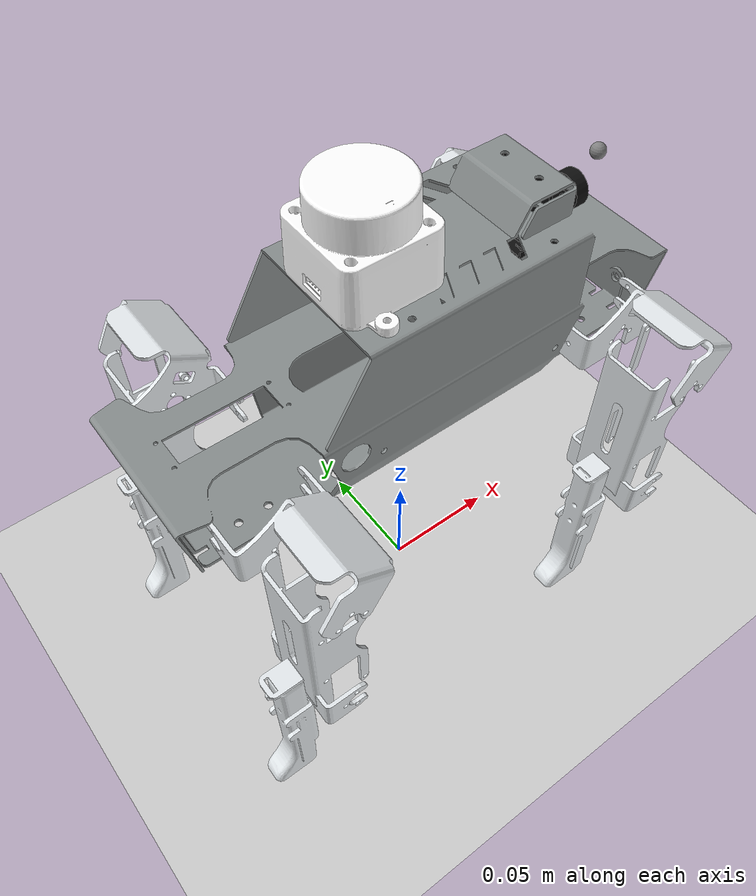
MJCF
<mujoco model="xgo">
  <compiler angle="radian" autolimits="true" inertiafromgeom="false" meshdir="assets/xgo" />
  <option timestep="0.001" gravity="0 0 -9.81" integrator="implicitfast" />
  <default>
    <!-- These passive joint values are simulation tuning; they are not present in the URDF. -->
    <joint damping="0.03" armature="0.0005" frictionloss="0.01" />
    <geom friction="0.9 0.02 0.001" condim="3" />
    <!-- URDF limits: effort=25 Nm, position=[-pi,+pi].
         URDF velocity=1.5 rad/s is enforced by mujoco_sim.py as a command slew-rate limit. -->
    <position kp="6.0" kv="0.12" ctrllimited="true" ctrlrange="-3.141592653589793 3.141592653589793" forcelimited="true" forcerange="-25 25" />
    <default class="collision">
      <geom group="3" />
    </default>
    <default class="visual">
      <geom type="mesh" group="1" contype="0" conaffinity="0" mass="0" />
    </default>
  </default>
  <asset>
    <mesh name="XGO_base_link_0" file="XGO_base_link_0.obj" />
    <mesh name="XGO_lf_hip_link_0" file="XGO_lf_hip_link_0.obj" />
    <mesh name="XGO_lf_upper_leg_link_0" file="XGO_lf_upper_leg_link_0.obj" />
    <mesh name="XGO_lf_lower_leg_link_0" file="XGO_lf_lower_leg_link_0.obj" />
    <mesh name="XGO_rf_hip_link_0" file="XGO_rf_hip_link_0.obj" />
    <mesh name="XGO_rf_upper_leg_link_0" file="XGO_rf_upper_leg_link_0.obj" />
    <mesh name="XGO_rf_lower_leg_link_0" file="XGO_rf_lower_leg_link_0.obj" />
    <mesh name="XGO_lh_hip_link_0" file="XGO_lh_hip_link_0.obj" />
    <mesh name="XGO_lh_upper_leg_link_0" file="XGO_lh_upper_leg_link_0.obj" />
    <mesh name="XGO_lh_lower_leg_link_0" file="XGO_lh_lower_leg_link_0.obj" />
    <mesh name="XGO_rh_hip_link_0" file="XGO_rh_hip_link_0.obj" />
    <mesh name="XGO_rh_upper_leg_link_0" file="XGO_rh_upper_leg_link_0.obj" />
    <mesh name="XGO_rh_lower_leg_link_0" file="XGO_rh_lower_leg_link_0.obj" />
    <mesh name="XGO_camera_link_0" file="XGO_camera_link_0.obj" />
    <mesh name="XGO_laser_link_0" file="XGO_laser_link_0.obj" />
  </asset>
  <worldbody>
    <geom name="floor" type="plane" size="10 10 0.1" rgba="0.8 0.8 0.8 1" />
    <light pos="0 0 2" dir="0 0 -1" />
    <!-- Spawn height is a simulator initial condition, not a URDF property. -->
    <body name="base_link" pos="0 0 0.115">
      <freejoint name="root" />
      <inertial pos="0.00520835146477011 -0.000260539720599709 0.0280591836024867" mass="0.387351847505872" fullinertia="0.000190614924105559 0.0010563840813291 0.00118548753067654 1.611909782579E-06 -3.19577698047172E-06 -1.54888786284979E-06" />
      <!-- Simplified collision box fitted to the STL axis-aligned bounds. -->
      <geom name="base_collision" type="box" size="0.10447969287633896 0.030220000073313713 0.040951005241367966" pos="-0.0016277730464935303 0 0.03910232422640547" rgba="0.2 0.3 0.6 1" class="collision" />
      <geom name="base_link_visual" class="visual" mesh="XGO_base_link_0" rgba="0.529411764705882 0.549019607843137 0.549019607843137 1" />
      <body name="lf_hip_link" pos="0.09332 0.022407 0.01454">
        <joint name="lf_hip_joint" type="hinge" axis="1 0 0" limited="true" range="-3.141592653589793 3.141592653589793" />
        <inertial pos="-0.0139720018610026 0.0250894092965121 0.00927328896542384" mass="0.019600254805245" fullinertia="5.89203493378017E-06 3.7904205321723E-06 6.88837034802653E-06 -5.67038080686865E-07 -2.62883769311083E-07 -1.16491568847576E-06" />
        <geom name="lf_hip_collision" type="capsule" fromto="0 0 0 -0.018325 0.049313 0" size="0.009" rgba="0.5 0.5 0.5 1" class="collision" />
        <geom name="lf_hip_link_visual" class="visual" mesh="XGO_lf_hip_link_0" rgba="0.898039215686275 0.917647058823529 0.929411764705882 1" />
        <body name="lf_upper_leg_link" pos="-0.018325 0.049313 0">
          <joint name="lf_upper_leg_joint" type="hinge" axis="0 1 0" limited="true" range="-3.141592653589793 3.141592653589793" />
          <inertial pos="-0.00689428079248722 -0.0186700000000002 -0.0299480398915498" mass="0.012342949675616" fullinertia="5.47497407669945E-06 4.86023562858699E-06 1.83454593627849E-06 -3.81090641763637E-22 5.64425515319236E-21 1.43987804089399E-12" />
          <geom name="lf_upper_collision" type="capsule" fromto="0 0 0 0 -0.00072 -0.059896" size="0.008" rgba="0.3 0.3 0.3 1" class="collision" />
          <geom name="lf_upper_leg_link_visual" class="visual" mesh="XGO_lf_upper_leg_link_0" rgba="0.898039215686275 0.917647058823529 0.929411764705882 1" />
          <body name="lf_lower_leg_link" pos="0 -0.00072 -0.059896">
            <joint name="lf_lower_leg_joint" type="hinge" axis="0 1 0" limited="true" range="-3.141592653589793 3.141592653589793" />
            <inertial pos="-0.0167811557825132 -0.0183250059303989 -0.03162385840477" mass="0.022687879462132" fullinertia="1.41147289858082E-05 1.36483004430885E-05 1.39274465973039E-06 -5.34206016944144E-13 -9.81905906721924E-07 -2.32220795182774E-12" />
            <geom name="lf_lower_collision" type="capsule" fromto="0 0 0 -0.028 0 -0.0815" size="0.006" rgba="0.3 0.3 0.3 1" class="collision" />
            <geom name="lf_foot" type="sphere" pos="-0.028 0 -0.0815" size="0.008" rgba="0.9 0.4 0.2 1" class="collision" />
            <geom name="lf_lower_leg_link_visual" class="visual" mesh="XGO_lf_lower_leg_link_0" rgba="0.898039215686275 0.917647058823529 0.929411764705882 1" />
            <site name="lf_foot_site" pos="-0.028 0 -0.0815" size="0.004" />
          </body>
        </body>
      </body>
      <body name="rf_hip_link" pos="0.09332 -0.022517 0.01454">
        <joint name="rf_hip_joint" type="hinge" axis="1 0 0" limited="true" range="-3.141592653589793 3.141592653589793" />
        <inertial pos="-0.0139720087743548 -0.0250894047059051 0.00927327973937202" mass="0.00980012555956536" fullinertia="2.94601764038129E-06 1.89520891096478E-06 3.44418624242758E-06 2.83519397568544E-07 -1.31441224533273E-07 5.82458368574124E-07" />
        <geom name="rf_hip_collision" type="capsule" fromto="0 0 0 -0.018325 -0.049313 0" size="0.009" rgba="0.5 0.5 0.5 1" class="collision" />
        <geom name="rf_hip_link_visual" class="visual" mesh="XGO_rf_hip_link_0" rgba="0.898039215686275 0.917647058823529 0.929411764705882 1" />
        <body name="rf_upper_leg_link" pos="-0.018325 -0.049313 0">
          <joint name="rf_upper_leg_joint" type="hinge" axis="0 1 0" limited="true" range="-3.141592653589793 3.141592653589793" />
          <inertial pos="-0.00689428079248688 0.018700000000002 -0.0299480398915499" mass="0.0123429496756159" fullinertia="5.47497407669944E-06 4.86023562858698E-06 1.83454593627847E-06 -2.0611276716309E-20 1.96257242900458E-21 1.43987803985982E-12" />
          <geom name="rf_upper_collision" type="capsule" fromto="0 0 0 0 0 -0.059896" size="0.008" rgba="0.3 0.3 0.3 1" class="collision" />
          <geom name="rf_upper_leg_link_visual" class="visual" mesh="XGO_rf_upper_leg_link_0" rgba="0.898039215686275 0.917647058823529 0.929411764705882 1" />
          <body name="rf_lower_leg_link" pos="0 0 -0.059896">
            <joint name="rf_lower_leg_joint" type="hinge" axis="0 1 0" limited="true" range="-3.141592653589793 3.141592653589793" />
            <inertial pos="-0.016781155771109 0.0183249940632203 -0.0316238583795284" mass="0.0226878794123114" fullinertia="1.41147289746255E-05 1.3648300431669E-05 1.39274465829374E-06 -5.3440270556883E-13 -9.81905905136456E-07 -2.32170698199082E-12" />
            <geom name="rf_lower_collision" type="capsule" fromto="0 0 0 -0.028 0 -0.0815" size="0.006" rgba="0.3 0.3 0.3 1" class="collision" />
            <geom name="rf_foot" type="sphere" pos="-0.028 0 -0.0815" size="0.008" rgba="0.9 0.4 0.2 1" class="collision" />
            <geom name="rf_lower_leg_link_visual" class="visual" mesh="XGO_rf_lower_leg_link_0" rgba="0.898039215686275 0.917647058823529 0.929411764705882 1" />
            <site name="rf_foot_site" pos="-0.028 0 -0.0815" size="0.004" />
          </body>
        </body>
      </body>
      <body name="lh_hip_link" pos="-0.05668 0.022407 0.01454">
        <joint name="lh_hip_joint" type="hinge" axis="1 0 0" limited="true" range="-3.141592653589793 3.141592653589793" />
        <inertial pos="-0.0139720018610022 0.0250894092965121 0.00927328896542402" mass="0.019600254805245" fullinertia="5.89203493378016E-06 3.79042053217232E-06 6.8883703480265E-06 -5.67038080686868E-07 -2.62883769311102E-07 -1.16491568847579E-06" />
        <geom name="lh_hip_collision" type="capsule" fromto="0 0 0 -0.0183249999999999 0.0493130541805868 0" size="0.009" rgba="0.5 0.5 0.5 1" class="collision" />
        <geom name="lh_hip_link_visual" class="visual" mesh="XGO_lh_hip_link_0" rgba="0.898039215686275 0.917647058823529 0.929411764705882 1" />
        <body name="lh_upper_leg_link" pos="-0.0183249999999999 0.0493130541805868 0">
          <joint name="lh_upper_leg_joint" type="hinge" axis="0 1 0" limited="true" range="-3.141592653589793 3.141592653589793" />
          <inertial pos="-0.00689428079248695 -0.0186700000000005 -0.0299480398915495" mass="0.0123429496756159" fullinertia="5.47497407669944E-06 4.86023562858698E-06 1.83454593627848E-06 -2.75633243799764E-21 9.32745289581667E-21 1.4398780610445E-12" />
          <geom name="lh_upper_collision" type="capsule" fromto="0 0 0 0 -0.00072 -0.059896" size="0.008" rgba="0.3 0.3 0.3 1" class="collision" />
          <geom name="lh_upper_leg_link_visual" class="visual" mesh="XGO_lh_upper_leg_link_0" rgba="0.898039215686275 0.917647058823529 0.929411764705882 1" />
          <body name="lh_lower_leg_link" pos="0 -0.00072 -0.059896">
            <joint name="lh_lower_leg_joint" type="hinge" axis="0 1 0" limited="true" range="-3.141592653589793 3.141592653589793" />
            <inertial pos="-0.0167811557787652 -0.0183250059325003 -0.0316238584061345" mass="0.0226878794439316" fullinertia="1.41147289784473E-05 1.36483004357316E-05 1.39274465908676E-06 -5.34101678210922E-13 -9.81905906147013E-07 -2.32069575705543E-12" />
            <geom name="lh_lower_collision" type="capsule" fromto="0 0 0 -0.028 0 -0.0815" size="0.006" rgba="0.3 0.3 0.3 1" class="collision" />
            <geom name="lh_foot" type="sphere" pos="-0.028 0 -0.0815" size="0.008" rgba="0.9 0.4 0.2 1" class="collision" />
            <geom name="lh_lower_leg_link_visual" class="visual" mesh="XGO_lh_lower_leg_link_0" rgba="0.898039215686275 0.917647058823529 0.929411764705882 1" />
            <site name="lh_foot_site" pos="-0.028 0 -0.0815" size="0.004" />
          </body>
        </body>
      </body>
      <body name="rh_hip_link" pos="-0.05668 -0.022517 0.01454">
        <joint name="rh_hip_joint" type="hinge" axis="1 0 0" limited="true" range="-3.141592653589793 3.141592653589793" />
        <inertial pos="-0.0139720087743545 -0.0250894047059051 0.00927327973937168" mass="0.00980012555956509" fullinertia="2.94601764038125E-06 1.89520891096475E-06 3.44418624242756E-06 2.83519397568547E-07 -1.31441224533272E-07 5.8245836857411E-07" />
        <geom name="rh_hip_collision" type="capsule" fromto="0 0 0 -0.018325 -0.049313 0" size="0.009" rgba="0.5 0.5 0.5 1" class="collision" />
        <geom name="rh_hip_link_visual" class="visual" mesh="XGO_rh_hip_link_0" rgba="0.898039215686275 0.917647058823529 0.929411764705882 1" />
        <body name="rh_upper_leg_link" pos="-0.018325 -0.049313 0">
          <joint name="rh_upper_leg_joint" type="hinge" axis="0 1 0" limited="true" range="-3.141592653589793 3.141592653589793" />
          <inertial pos="-0.00689428079248684 0.0187000000000015 -0.0299480398915497" mass="0.0123429496756159" fullinertia="5.47497407669943E-06 4.86023562858697E-06 1.83454593627849E-06 -1.59437966027726E-21 2.38691803281188E-22 1.43987807159176E-12" />
          <geom name="rh_upper_collision" type="capsule" fromto="0 0 0 0 0 -0.059896" size="0.008" rgba="0.3 0.3 0.3 1" class="collision" />
          <geom name="rh_upper_leg_link_visual" class="visual" mesh="XGO_rh_upper_leg_link_0" rgba="0.898039215686275 0.917647058823529 0.929411764705882 1" />
          <body name="rh_lower_leg_link" pos="0 0 -0.059896">
            <joint name="rh_lower_leg_joint" type="hinge" axis="0 1 0" limited="true" range="-3.141592653589793 3.141592653589793" />
            <inertial pos="-0.0167811557016845 0.0183249940379433 -0.0316238581313005" mass="0.0226878792028959" fullinertia="1.41147288978932E-05 1.36483003526844E-05 1.39274464946125E-06 -5.37750477164225E-13 -9.81905884621754E-07 -2.33519052107278E-12" />
            <geom name="rh_lower_collision" type="capsule" fromto="0 0 0 -0.028 0 -0.0815" size="0.006" rgba="0.3 0.3 0.3 1" class="collision" />
            <geom name="rh_foot" type="sphere" pos="-0.028 0 -0.0815" size="0.008" rgba="0.9 0.4 0.2 1" class="collision" />
            <geom name="rh_lower_leg_link_visual" class="visual" mesh="XGO_rh_lower_leg_link_0" rgba="0.898039215686275 0.917647058823529 0.929411764705882 1" />
            <site name="rh_foot_site" pos="-0.028 0 -0.0815" size="0.004" />
          </body>
        </body>
      </body>
      <!-- Fixed payload links copied from the URDF so their mass contributes to base dynamics. -->
      <body name="camera_link" pos="0.075751 0 0.059653">
        <inertial pos="-0.0141667877097374 -4.70243546289578E-05 -0.000117154201057887" mass="0.00465716120355248" fullinertia="3.06225211138596E-07 3.69724180703298E-07 3.81829903495435E-07 -1.92519366340594E-09 5.22083640009109E-09 2.22463439295763E-09" />
        <geom name="camera_link_visual" class="visual" mesh="XGO_camera_link_0" rgba="0.0549019607843137 0.0549019607843137 0.0549019607843137 1" />
      </body>
      <body name="laser_link" pos="-0.016732 4.4164E-05 0.10335">
        <inertial pos="3.78566923279477E-05 -0.000119937093508327 -0.022798439512917" mass="0.0141156733693049" fullinertia="2.42577727195545E-06 2.37021015047955E-06 4.25931212063486E-06 -7.70141087552742E-09 6.54011918414534E-09 6.61859556534528E-09" />
        <geom name="laser_link_visual" class="visual" mesh="XGO_laser_link_0" rgba="1 1 1 1" />
      </body>
      <body name="imu_link" pos="0.085 4.4164E-05 0.070">
        <inertial pos="0 0 0" mass="0.0141156733693049" fullinertia="2.42577727195545E-06 2.37021015047955E-06 4.25931212063486E-06 0 0 0" />
        <site name="imu_site" pos="0 0 0" size="0.003" />
      </body>
    </body>
  </worldbody>
  <actuator>
    <position name="lf_hip_joint" joint="lf_hip_joint" />
    <position name="lf_upper_leg_joint" joint="lf_upper_leg_joint" />
    <position name="lf_lower_leg_joint" joint="lf_lower_leg_joint" />
    <position name="rf_hip_joint" joint="rf_hip_joint" />
    <position name="rf_upper_leg_joint" joint="rf_upper_leg_joint" />
    <position name="rf_lower_leg_joint" joint="rf_lower_leg_joint" />
    <position name="lh_hip_joint" joint="lh_hip_joint" />
    <position name="lh_upper_leg_joint" joint="lh_upper_leg_joint" />
    <position name="lh_lower_leg_joint" joint="lh_lower_leg_joint" />
    <position name="rh_hip_joint" joint="rh_hip_joint" />
    <position name="rh_upper_leg_joint" joint="rh_upper_leg_joint" />
    <position name="rh_lower_leg_joint" joint="rh_lower_leg_joint" />
  </actuator>
</mujoco>
